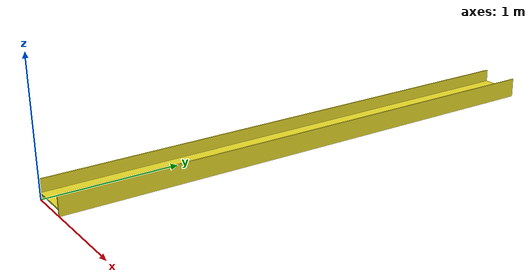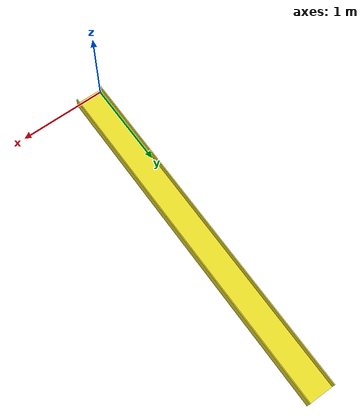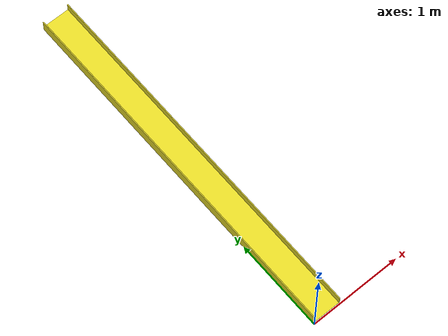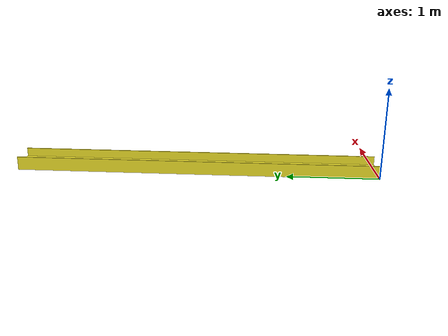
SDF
<?xml version="1.0" ?>
<sdf version="1.5">
  <model name="mbzirc_uav_channel">
    <static>true</static>
    <link name="link1">
	<pose frame=''>0.15 2.0 0.05 0 0.0 0</pose>
      <collision name="collision">
        <geometry>
          <box>
            <size>0.3 4.0 0.01</size>
          </box>
        </geometry>
      </collision>
      <visual name="visual">
        <cast_shadows>false</cast_shadows>
        <geometry>
          <box>
            <size>0.3 4.0 0.01</size>
          </box>
        </geometry>
        <material>
          <script>
            <name>Gazebo/Yellow</name>
            <uri>file://media/materials/scripts/gazebo.material</uri>
          </script>
        </material>
      </visual>
    </link>
    <link name="link2">
	<pose frame=''>0.0 2.0 0.075 0 0.0 0.0</pose>
      <collision name="collision">
        <geometry>
          <box>
            <size>0.01 4.0 0.15</size>
          </box>
        </geometry>
      </collision>
      <visual name="visual">
        <cast_shadows>false</cast_shadows>
        <geometry>
          <box>
            <size>0.01 4.0 0.15</size>
          </box>
        </geometry>
        <material>
          <script>
            <name>Gazebo/Yellow</name>
            <uri>file://media/materials/scripts/gazebo.material</uri>
          </script>
        </material>
      </visual>
    </link>
    <link name="link3">
	<pose frame=''>0.3 2.0 0.075 0 0.0 0.0</pose>
      <collision name="collision">
        <geometry>
          <box>
            <size>0.01 4.0 0.15</size>
          </box>
        </geometry>
      </collision>
      <visual name="visual">
        <cast_shadows>false</cast_shadows>
        <geometry>
          <box>
            <size>0.01 4.0 0.15</size>
          </box>
        </geometry>
        <material>
          <script>
            <name>Gazebo/Yellow</name>
            <uri>file://media/materials/scripts/gazebo.material</uri>
          </script>
        </material>
      </visual>
    </link>
  </model>
</sdf>
